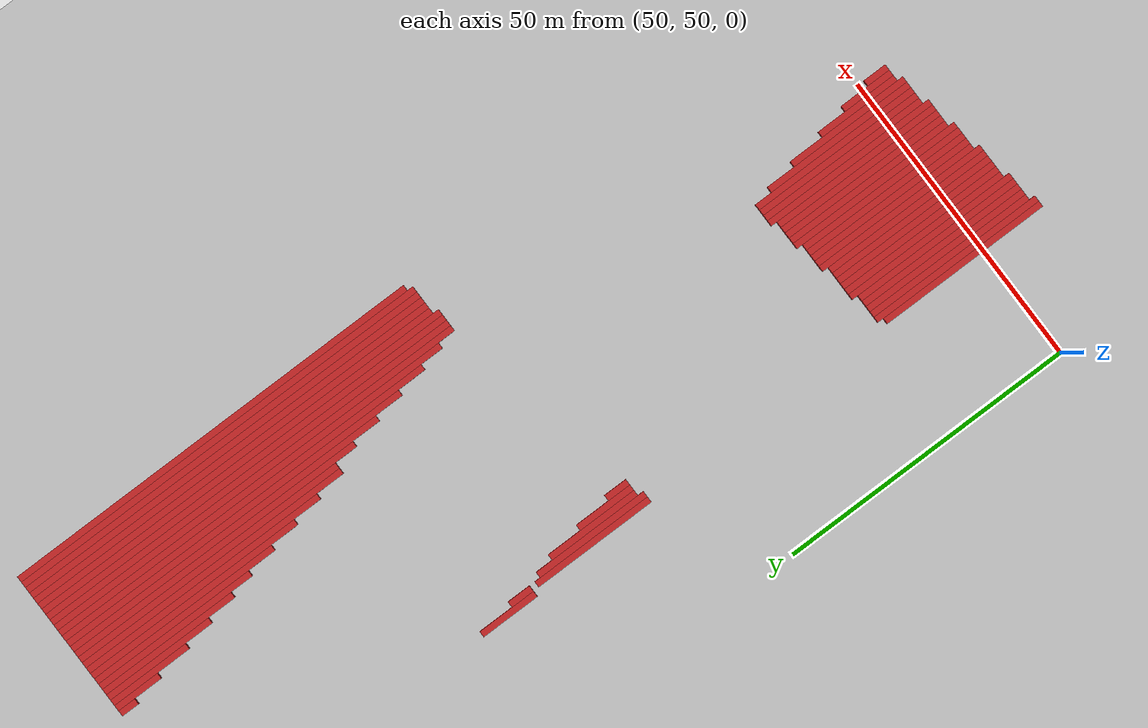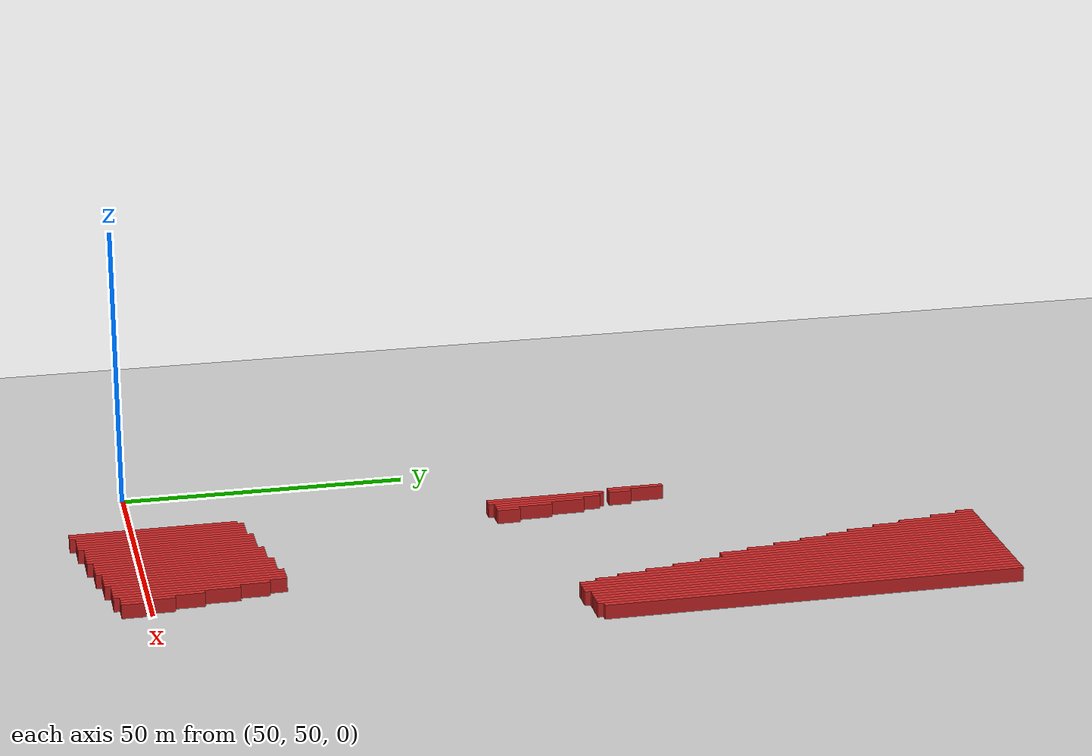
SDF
<sdf version="1.4">
 <world name="1_wall">
  <model name="ground_plane">
   <static>1</static>
   <link name="link">
    <collision name="collision">
     <geometry><plane><normal>0 0 1</normal><size>1000 1000</size></plane></geometry>
     <surface><friction><ode><mu>100</mu><mu2>50</mu2></ode></friction></surface>
    </collision>
    <visual name="visual">
     <cast_shadows>0</cast_shadows>
     <geometry><plane><normal>0 0 1</normal><size>10000 10000</size></plane></geometry>
     <material>
      <script><uri>file://media/materials/scripts/gazebo.material</uri><name>Gazebo/Grey</name></script>
     </material>
    </visual>
    <velocity_decay><linear>0</linear><angular>0</angular></velocity_decay>
   </link>
  </model>
  <model name="Wall_128">
   <static>1</static>
   <link name="Wall_128">
    <collision name="Wall_Collision_128">
     <geometry><box><size>10.0 1.0 2.5</size></box></geometry>
     <pose>0 0 1.25 0 -0 0</pose>
    </collision>
    <visual name="Wall_Visual_128">
     <pose>0 0 1.25 0 -0 0</pose>
     <geometry><box><size>10.0 1.0 2.5</size></box></geometry>
     <material>
      <script><uri>file://media/materials/scripts/gazebo.material</uri><name>Gazebo/Red</name></script>
     </material>
    </visual>
    <velocity_decay><linear>0</linear><angular>0</angular></velocity_decay>
    <pose>68.5 139.0 0 0 0 1.5707963267948966</pose>
   </link>
  </model>
  <model name="Wall_129">
   <static>1</static>
   <link name="Wall_129">
    <collision name="Wall_Collision_129">
     <geometry><box><size>29.0 1.0 2.5</size></box></geometry>
     <pose>0 0 1.25 0 -0 0</pose>
    </collision>
    <visual name="Wall_Visual_129">
     <pose>0 0 1.25 0 -0 0</pose>
     <geometry><box><size>29.0 1.0 2.5</size></box></geometry>
     <material>
      <script><uri>file://media/materials/scripts/gazebo.material</uri><name>Gazebo/Red</name></script>
     </material>
    </visual>
    <velocity_decay><linear>0</linear><angular>0</angular></velocity_decay>
    <pose>69.5 53.5 0 0 0 1.5707963267948966</pose>
   </link>
  </model>
  <model name="Wall_130">
   <static>1</static>
   <link name="Wall_130">
    <collision name="Wall_Collision_130">
     <geometry><box><size>21.0 1.0 2.5</size></box></geometry>
     <pose>0 0 1.25 0 -0 0</pose>
    </collision>
    <visual name="Wall_Visual_130">
     <pose>0 0 1.25 0 -0 0</pose>
     <geometry><box><size>21.0 1.0 2.5</size></box></geometry>
     <material>
      <script><uri>file://media/materials/scripts/gazebo.material</uri><name>Gazebo/Red</name></script>
     </material>
    </visual>
    <velocity_decay><linear>0</linear><angular>0</angular></velocity_decay>
    <pose>69.5 122.5 0 0 0 1.5707963267948966</pose>
   </link>
  </model>
  <model name="Wall_131">
   <static>1</static>
   <link name="Wall_131">
    <collision name="Wall_Collision_131">
     <geometry><box><size>4.0 1.0 2.5</size></box></geometry>
     <pose>0 0 1.25 0 -0 0</pose>
    </collision>
    <visual name="Wall_Visual_131">
     <pose>0 0 1.25 0 -0 0</pose>
     <geometry><box><size>4.0 1.0 2.5</size></box></geometry>
     <material>
      <script><uri>file://media/materials/scripts/gazebo.material</uri><name>Gazebo/Red</name></script>
     </material>
    </visual>
    <velocity_decay><linear>0</linear><angular>0</angular></velocity_decay>
    <pose>69.5 136.0 0 0 0 1.5707963267948966</pose>
   </link>
  </model>
  <model name="Wall_132">
   <static>1</static>
   <link name="Wall_132">
    <collision name="Wall_Collision_132">
     <geometry><box><size>30.0 1.0 2.5</size></box></geometry>
     <pose>0 0 1.25 0 -0 0</pose>
    </collision>
    <visual name="Wall_Visual_132">
     <pose>0 0 1.25 0 -0 0</pose>
     <geometry><box><size>30.0 1.0 2.5</size></box></geometry>
     <material>
      <script><uri>file://media/materials/scripts/gazebo.material</uri><name>Gazebo/Red</name></script>
     </material>
    </visual>
    <velocity_decay><linear>0</linear><angular>0</angular></velocity_decay>
    <pose>70.5 54.0 0 0 0 1.5707963267948966</pose>
   </link>
  </model>
  <model name="Wall_133">
   <static>1</static>
   <link name="Wall_133">
    <collision name="Wall_Collision_133">
     <geometry><box><size>20.0 1.0 2.5</size></box></geometry>
     <pose>0 0 1.25 0 -0 0</pose>
    </collision>
    <visual name="Wall_Visual_133">
     <pose>0 0 1.25 0 -0 0</pose>
     <geometry><box><size>20.0 1.0 2.5</size></box></geometry>
     <material>
      <script><uri>file://media/materials/scripts/gazebo.material</uri><name>Gazebo/Red</name></script>
     </material>
    </visual>
    <velocity_decay><linear>0</linear><angular>0</angular></velocity_decay>
    <pose>70.5 122.0 0 0 0 1.5707963267948966</pose>
   </link>
  </model>
  <model name="Wall_134">
   <static>1</static>
   <link name="Wall_134">
    <collision name="Wall_Collision_134">
     <geometry><box><size>29.0 1.0 2.5</size></box></geometry>
     <pose>0 0 1.25 0 -0 0</pose>
    </collision>
    <visual name="Wall_Visual_134">
     <pose>0 0 1.25 0 -0 0</pose>
     <geometry><box><size>29.0 1.0 2.5</size></box></geometry>
     <material>
      <script><uri>file://media/materials/scripts/gazebo.material</uri><name>Gazebo/Red</name></script>
     </material>
    </visual>
    <velocity_decay><linear>0</linear><angular>0</angular></velocity_decay>
    <pose>71.5 54.5 0 0 0 1.5707963267948966</pose>
   </link>
  </model>
  <model name="Wall_135">
   <static>1</static>
   <link name="Wall_135">
    <collision name="Wall_Collision_135">
     <geometry><box><size>16.0 1.0 2.5</size></box></geometry>
     <pose>0 0 1.25 0 -0 0</pose>
    </collision>
    <visual name="Wall_Visual_135">
     <pose>0 0 1.25 0 -0 0</pose>
     <geometry><box><size>16.0 1.0 2.5</size></box></geometry>
     <material>
      <script><uri>file://media/materials/scripts/gazebo.material</uri><name>Gazebo/Red</name></script>
     </material>
    </visual>
    <velocity_decay><linear>0</linear><angular>0</angular></velocity_decay>
    <pose>71.5 121.0 0 0 0 1.5707963267948966</pose>
   </link>
  </model>
  <model name="Wall_136">
   <static>1</static>
   <link name="Wall_136">
    <collision name="Wall_Collision_136">
     <geometry><box><size>29.0 1.0 2.5</size></box></geometry>
     <pose>0 0 1.25 0 -0 0</pose>
    </collision>
    <visual name="Wall_Visual_136">
     <pose>0 0 1.25 0 -0 0</pose>
     <geometry><box><size>29.0 1.0 2.5</size></box></geometry>
     <material>
      <script><uri>file://media/materials/scripts/gazebo.material</uri><name>Gazebo/Red</name></script>
     </material>
    </visual>
    <velocity_decay><linear>0</linear><angular>0</angular></velocity_decay>
    <pose>72.5 54.5 0 0 0 1.5707963267948966</pose>
   </link>
  </model>
  <model name="Wall_137">
   <static>1</static>
   <link name="Wall_137">
    <collision name="Wall_Collision_137">
     <geometry><box><size>10.0 1.0 2.5</size></box></geometry>
     <pose>0 0 1.25 0 -0 0</pose>
    </collision>
    <visual name="Wall_Visual_137">
     <pose>0 0 1.25 0 -0 0</pose>
     <geometry><box><size>10.0 1.0 2.5</size></box></geometry>
     <material>
      <script><uri>file://media/materials/scripts/gazebo.material</uri><name>Gazebo/Red</name></script>
     </material>
    </visual>
    <velocity_decay><linear>0</linear><angular>0</angular></velocity_decay>
    <pose>72.5 118.0 0 0 0 1.5707963267948966</pose>
   </link>
  </model>
  <model name="Wall_138">
   <static>1</static>
   <link name="Wall_138">
    <collision name="Wall_Collision_138">
     <geometry><box><size>29.0 1.0 2.5</size></box></geometry>
     <pose>0 0 1.25 0 -0 0</pose>
    </collision>
    <visual name="Wall_Visual_138">
     <pose>0 0 1.25 0 -0 0</pose>
     <geometry><box><size>29.0 1.0 2.5</size></box></geometry>
     <material>
      <script><uri>file://media/materials/scripts/gazebo.material</uri><name>Gazebo/Red</name></script>
     </material>
    </visual>
    <velocity_decay><linear>0</linear><angular>0</angular></velocity_decay>
    <pose>73.5 54.5 0 0 0 1.5707963267948966</pose>
   </link>
  </model>
  <model name="Wall_139">
   <static>1</static>
   <link name="Wall_139">
    <collision name="Wall_Collision_139">
     <geometry><box><size>4.0 1.0 2.5</size></box></geometry>
     <pose>0 0 1.25 0 -0 0</pose>
    </collision>
    <visual name="Wall_Visual_139">
     <pose>0 0 1.25 0 -0 0</pose>
     <geometry><box><size>4.0 1.0 2.5</size></box></geometry>
     <material>
      <script><uri>file://media/materials/scripts/gazebo.material</uri><name>Gazebo/Red</name></script>
     </material>
    </visual>
    <velocity_decay><linear>0</linear><angular>0</angular></velocity_decay>
    <pose>73.5 115.0 0 0 0 1.5707963267948966</pose>
   </link>
  </model>
  <model name="Wall_140">
   <static>1</static>
   <link name="Wall_140">
    <collision name="Wall_Collision_140">
     <geometry><box><size>29.0 1.0 2.5</size></box></geometry>
     <pose>0 0 1.25 0 -0 0</pose>
    </collision>
    <visual name="Wall_Visual_140">
     <pose>0 0 1.25 0 -0 0</pose>
     <geometry><box><size>29.0 1.0 2.5</size></box></geometry>
     <material>
      <script><uri>file://media/materials/scripts/gazebo.material</uri><name>Gazebo/Red</name></script>
     </material>
    </visual>
    <velocity_decay><linear>0</linear><angular>0</angular></velocity_decay>
    <pose>74.5 54.5 0 0 0 1.5707963267948966</pose>
   </link>
  </model>
  <model name="Wall_141">
   <static>1</static>
   <link name="Wall_141">
    <collision name="Wall_Collision_141">
     <geometry><box><size>30.0 1.0 2.5</size></box></geometry>
     <pose>0 0 1.25 0 -0 0</pose>
    </collision>
    <visual name="Wall_Visual_141">
     <pose>0 0 1.25 0 -0 0</pose>
     <geometry><box><size>30.0 1.0 2.5</size></box></geometry>
     <material>
      <script><uri>file://media/materials/scripts/gazebo.material</uri><name>Gazebo/Red</name></script>
     </material>
    </visual>
    <velocity_decay><linear>0</linear><angular>0</angular></velocity_decay>
    <pose>75.5 55.0 0 0 0 1.5707963267948966</pose>
   </link>
  </model>
  <model name="Wall_142">
   <static>1</static>
   <link name="Wall_142">
    <collision name="Wall_Collision_142">
     <geometry><box><size>29.0 1.0 2.5</size></box></geometry>
     <pose>0 0 1.25 0 -0 0</pose>
    </collision>
    <visual name="Wall_Visual_142">
     <pose>0 0 1.25 0 -0 0</pose>
     <geometry><box><size>29.0 1.0 2.5</size></box></geometry>
     <material>
      <script><uri>file://media/materials/scripts/gazebo.material</uri><name>Gazebo/Red</name></script>
     </material>
    </visual>
    <velocity_decay><linear>0</linear><angular>0</angular></velocity_decay>
    <pose>76.5 55.5 0 0 0 1.5707963267948966</pose>
   </link>
  </model>
  <model name="Wall_143">
   <static>1</static>
   <link name="Wall_143">
    <collision name="Wall_Collision_143">
     <geometry><box><size>29.0 1.0 2.5</size></box></geometry>
     <pose>0 0 1.25 0 -0 0</pose>
    </collision>
    <visual name="Wall_Visual_143">
     <pose>0 0 1.25 0 -0 0</pose>
     <geometry><box><size>29.0 1.0 2.5</size></box></geometry>
     <material>
      <script><uri>file://media/materials/scripts/gazebo.material</uri><name>Gazebo/Red</name></script>
     </material>
    </visual>
    <velocity_decay><linear>0</linear><angular>0</angular></velocity_decay>
    <pose>77.5 55.5 0 0 0 1.5707963267948966</pose>
   </link>
  </model>
  <model name="Wall_144">
   <static>1</static>
   <link name="Wall_144">
    <collision name="Wall_Collision_144">
     <geometry><box><size>29.0 1.0 2.5</size></box></geometry>
     <pose>0 0 1.25 0 -0 0</pose>
    </collision>
    <visual name="Wall_Visual_144">
     <pose>0 0 1.25 0 -0 0</pose>
     <geometry><box><size>29.0 1.0 2.5</size></box></geometry>
     <material>
      <script><uri>file://media/materials/scripts/gazebo.material</uri><name>Gazebo/Red</name></script>
     </material>
    </visual>
    <velocity_decay><linear>0</linear><angular>0</angular></velocity_decay>
    <pose>78.5 55.5 0 0 0 1.5707963267948966</pose>
   </link>
  </model>
  <model name="Wall_145">
   <static>1</static>
   <link name="Wall_145">
    <collision name="Wall_Collision_145">
     <geometry><box><size>29.0 1.0 2.5</size></box></geometry>
     <pose>0 0 1.25 0 -0 0</pose>
    </collision>
    <visual name="Wall_Visual_145">
     <pose>0 0 1.25 0 -0 0</pose>
     <geometry><box><size>29.0 1.0 2.5</size></box></geometry>
     <material>
      <script><uri>file://media/materials/scripts/gazebo.material</uri><name>Gazebo/Red</name></script>
     </material>
    </visual>
    <velocity_decay><linear>0</linear><angular>0</angular></velocity_decay>
    <pose>79.5 55.5 0 0 0 1.5707963267948966</pose>
   </link>
  </model>
  <model name="Wall_146">
   <static>1</static>
   <link name="Wall_146">
    <collision name="Wall_Collision_146">
     <geometry><box><size>29.0 1.0 2.5</size></box></geometry>
     <pose>0 0 1.25 0 -0 0</pose>
    </collision>
    <visual name="Wall_Visual_146">
     <pose>0 0 1.25 0 -0 0</pose>
     <geometry><box><size>29.0 1.0 2.5</size></box></geometry>
     <material>
      <script><uri>file://media/materials/scripts/gazebo.material</uri><name>Gazebo/Red</name></script>
     </material>
    </visual>
    <velocity_decay><linear>0</linear><angular>0</angular></velocity_decay>
    <pose>80.5 55.5 0 0 0 1.5707963267948966</pose>
   </link>
  </model>
  <model name="Wall_147">
   <static>1</static>
   <link name="Wall_147">
    <collision name="Wall_Collision_147">
     <geometry><box><size>30.0 1.0 2.5</size></box></geometry>
     <pose>0 0 1.25 0 -0 0</pose>
    </collision>
    <visual name="Wall_Visual_147">
     <pose>0 0 1.25 0 -0 0</pose>
     <geometry><box><size>30.0 1.0 2.5</size></box></geometry>
     <material>
      <script><uri>file://media/materials/scripts/gazebo.material</uri><name>Gazebo/Red</name></script>
     </material>
    </visual>
    <velocity_decay><linear>0</linear><angular>0</angular></velocity_decay>
    <pose>81.5 56.0 0 0 0 1.5707963267948966</pose>
   </link>
  </model>
  <model name="Wall_148">
   <static>1</static>
   <link name="Wall_148">
    <collision name="Wall_Collision_148">
     <geometry><box><size>29.0 1.0 2.5</size></box></geometry>
     <pose>0 0 1.25 0 -0 0</pose>
    </collision>
    <visual name="Wall_Visual_148">
     <pose>0 0 1.25 0 -0 0</pose>
     <geometry><box><size>29.0 1.0 2.5</size></box></geometry>
     <material>
      <script><uri>file://media/materials/scripts/gazebo.material</uri><name>Gazebo/Red</name></script>
     </material>
    </visual>
    <velocity_decay><linear>0</linear><angular>0</angular></velocity_decay>
    <pose>82.5 56.5 0 0 0 1.5707963267948966</pose>
   </link>
  </model>
  <model name="Wall_149">
   <static>1</static>
   <link name="Wall_149">
    <collision name="Wall_Collision_149">
     <geometry><box><size>29.0 1.0 2.5</size></box></geometry>
     <pose>0 0 1.25 0 -0 0</pose>
    </collision>
    <visual name="Wall_Visual_149">
     <pose>0 0 1.25 0 -0 0</pose>
     <geometry><box><size>29.0 1.0 2.5</size></box></geometry>
     <material>
      <script><uri>file://media/materials/scripts/gazebo.material</uri><name>Gazebo/Red</name></script>
     </material>
    </visual>
    <velocity_decay><linear>0</linear><angular>0</angular></velocity_decay>
    <pose>83.5 56.5 0 0 0 1.5707963267948966</pose>
   </link>
  </model>
  <model name="Wall_150">
   <static>1</static>
   <link name="Wall_150">
    <collision name="Wall_Collision_150">
     <geometry><box><size>29.0 1.0 2.5</size></box></geometry>
     <pose>0 0 1.25 0 -0 0</pose>
    </collision>
    <visual name="Wall_Visual_150">
     <pose>0 0 1.25 0 -0 0</pose>
     <geometry><box><size>29.0 1.0 2.5</size></box></geometry>
     <material>
      <script><uri>file://media/materials/scripts/gazebo.material</uri><name>Gazebo/Red</name></script>
     </material>
    </visual>
    <velocity_decay><linear>0</linear><angular>0</angular></velocity_decay>
    <pose>84.5 56.5 0 0 0 1.5707963267948966</pose>
   </link>
  </model>
  <model name="Wall_151">
   <static>1</static>
   <link name="Wall_151">
    <collision name="Wall_Collision_151">
     <geometry><box><size>29.0 1.0 2.5</size></box></geometry>
     <pose>0 0 1.25 0 -0 0</pose>
    </collision>
    <visual name="Wall_Visual_151">
     <pose>0 0 1.25 0 -0 0</pose>
     <geometry><box><size>29.0 1.0 2.5</size></box></geometry>
     <material>
      <script><uri>file://media/materials/scripts/gazebo.material</uri><name>Gazebo/Red</name></script>
     </material>
    </visual>
    <velocity_decay><linear>0</linear><angular>0</angular></velocity_decay>
    <pose>85.5 56.5 0 0 0 1.5707963267948966</pose>
   </link>
  </model>
  <model name="Wall_152">
   <static>1</static>
   <link name="Wall_152">
    <collision name="Wall_Collision_152">
     <geometry><box><size>30.0 1.0 2.5</size></box></geometry>
     <pose>0 0 1.25 0 -0 0</pose>
    </collision>
    <visual name="Wall_Visual_152">
     <pose>0 0 1.25 0 -0 0</pose>
     <geometry><box><size>30.0 1.0 2.5</size></box></geometry>
     <material>
      <script><uri>file://media/materials/scripts/gazebo.material</uri><name>Gazebo/Red</name></script>
     </material>
    </visual>
    <velocity_decay><linear>0</linear><angular>0</angular></velocity_decay>
    <pose>86.5 57.0 0 0 0 1.5707963267948966</pose>
   </link>
  </model>
  <model name="Wall_153">
   <static>1</static>
   <link name="Wall_153">
    <collision name="Wall_Collision_153">
     <geometry><box><size>29.0 1.0 2.5</size></box></geometry>
     <pose>0 0 1.25 0 -0 0</pose>
    </collision>
    <visual name="Wall_Visual_153">
     <pose>0 0 1.25 0 -0 0</pose>
     <geometry><box><size>29.0 1.0 2.5</size></box></geometry>
     <material>
      <script><uri>file://media/materials/scripts/gazebo.material</uri><name>Gazebo/Red</name></script>
     </material>
    </visual>
    <velocity_decay><linear>0</linear><angular>0</angular></velocity_decay>
    <pose>87.5 57.5 0 0 0 1.5707963267948966</pose>
   </link>
  </model>
  <model name="Wall_154">
   <static>1</static>
   <link name="Wall_154">
    <collision name="Wall_Collision_154">
     <geometry><box><size>29.0 1.0 2.5</size></box></geometry>
     <pose>0 0 1.25 0 -0 0</pose>
    </collision>
    <visual name="Wall_Visual_154">
     <pose>0 0 1.25 0 -0 0</pose>
     <geometry><box><size>29.0 1.0 2.5</size></box></geometry>
     <material>
      <script><uri>file://media/materials/scripts/gazebo.material</uri><name>Gazebo/Red</name></script>
     </material>
    </visual>
    <velocity_decay><linear>0</linear><angular>0</angular></velocity_decay>
    <pose>88.5 57.5 0 0 0 1.5707963267948966</pose>
   </link>
  </model>
  <model name="Wall_155">
   <static>1</static>
   <link name="Wall_155">
    <collision name="Wall_Collision_155">
     <geometry><box><size>29.0 1.0 2.5</size></box></geometry>
     <pose>0 0 1.25 0 -0 0</pose>
    </collision>
    <visual name="Wall_Visual_155">
     <pose>0 0 1.25 0 -0 0</pose>
     <geometry><box><size>29.0 1.0 2.5</size></box></geometry>
     <material>
      <script><uri>file://media/materials/scripts/gazebo.material</uri><name>Gazebo/Red</name></script>
     </material>
    </visual>
    <velocity_decay><linear>0</linear><angular>0</angular></velocity_decay>
    <pose>89.5 57.5 0 0 0 1.5707963267948966</pose>
   </link>
  </model>
  <model name="Wall_156">
   <static>1</static>
   <link name="Wall_156">
    <collision name="Wall_Collision_156">
     <geometry><box><size>29.0 1.0 2.5</size></box></geometry>
     <pose>0 0 1.25 0 -0 0</pose>
    </collision>
    <visual name="Wall_Visual_156">
     <pose>0 0 1.25 0 -0 0</pose>
     <geometry><box><size>29.0 1.0 2.5</size></box></geometry>
     <material>
      <script><uri>file://media/materials/scripts/gazebo.material</uri><name>Gazebo/Red</name></script>
     </material>
    </visual>
    <velocity_decay><linear>0</linear><angular>0</angular></velocity_decay>
    <pose>90.5 57.5 0 0 0 1.5707963267948966</pose>
   </link>
  </model>
  <model name="Wall_157">
   <static>1</static>
   <link name="Wall_157">
    <collision name="Wall_Collision_157">
     <geometry><box><size>30.0 1.0 2.5</size></box></geometry>
     <pose>0 0 1.25 0 -0 0</pose>
    </collision>
    <visual name="Wall_Visual_157">
     <pose>0 0 1.25 0 -0 0</pose>
     <geometry><box><size>30.0 1.0 2.5</size></box></geometry>
     <material>
      <script><uri>file://media/materials/scripts/gazebo.material</uri><name>Gazebo/Red</name></script>
     </material>
    </visual>
    <velocity_decay><linear>0</linear><angular>0</angular></velocity_decay>
    <pose>91.5 58.0 0 0 0 1.5707963267948966</pose>
   </link>
  </model>
  <model name="Wall_158">
   <static>1</static>
   <link name="Wall_158">
    <collision name="Wall_Collision_158">
     <geometry><box><size>3.0 1.0 2.5</size></box></geometry>
     <pose>0 0 1.25 0 -0 0</pose>
    </collision>
    <visual name="Wall_Visual_158">
     <pose>0 0 1.25 0 -0 0</pose>
     <geometry><box><size>3.0 1.0 2.5</size></box></geometry>
     <material>
      <script><uri>file://media/materials/scripts/gazebo.material</uri><name>Gazebo/Red</name></script>
     </material>
    </visual>
    <velocity_decay><linear>0</linear><angular>0</angular></velocity_decay>
    <pose>91.5 192.5 0 0 0 1.5707963267948966</pose>
   </link>
  </model>
  <model name="Wall_159">
   <static>1</static>
   <link name="Wall_159">
    <collision name="Wall_Collision_159">
     <geometry><box><size>29.0 1.0 2.5</size></box></geometry>
     <pose>0 0 1.25 0 -0 0</pose>
    </collision>
    <visual name="Wall_Visual_159">
     <pose>0 0 1.25 0 -0 0</pose>
     <geometry><box><size>29.0 1.0 2.5</size></box></geometry>
     <material>
      <script><uri>file://media/materials/scripts/gazebo.material</uri><name>Gazebo/Red</name></script>
     </material>
    </visual>
    <velocity_decay><linear>0</linear><angular>0</angular></velocity_decay>
    <pose>92.5 58.5 0 0 0 1.5707963267948966</pose>
   </link>
  </model>
  <model name="Wall_160">
   <static>1</static>
   <link name="Wall_160">
    <collision name="Wall_Collision_160">
     <geometry><box><size>8.0 1.0 2.5</size></box></geometry>
     <pose>0 0 1.25 0 -0 0</pose>
    </collision>
    <visual name="Wall_Visual_160">
     <pose>0 0 1.25 0 -0 0</pose>
     <geometry><box><size>8.0 1.0 2.5</size></box></geometry>
     <material>
      <script><uri>file://media/materials/scripts/gazebo.material</uri><name>Gazebo/Red</name></script>
     </material>
    </visual>
    <velocity_decay><linear>0</linear><angular>0</angular></velocity_decay>
    <pose>92.5 190.0 0 0 0 1.5707963267948966</pose>
   </link>
  </model>
  <model name="Wall_161">
   <static>1</static>
   <link name="Wall_161">
    <collision name="Wall_Collision_161">
     <geometry><box><size>29.0 1.0 2.5</size></box></geometry>
     <pose>0 0 1.25 0 -0 0</pose>
    </collision>
    <visual name="Wall_Visual_161">
     <pose>0 0 1.25 0 -0 0</pose>
     <geometry><box><size>29.0 1.0 2.5</size></box></geometry>
     <material>
      <script><uri>file://media/materials/scripts/gazebo.material</uri><name>Gazebo/Red</name></script>
     </material>
    </visual>
    <velocity_decay><linear>0</linear><angular>0</angular></velocity_decay>
    <pose>93.5 58.5 0 0 0 1.5707963267948966</pose>
   </link>
  </model>
  <model name="Wall_162">
   <static>1</static>
   <link name="Wall_162">
    <collision name="Wall_Collision_162">
     <geometry><box><size>14.0 1.0 2.5</size></box></geometry>
     <pose>0 0 1.25 0 -0 0</pose>
    </collision>
    <visual name="Wall_Visual_162">
     <pose>0 0 1.25 0 -0 0</pose>
     <geometry><box><size>14.0 1.0 2.5</size></box></geometry>
     <material>
      <script><uri>file://media/materials/scripts/gazebo.material</uri><name>Gazebo/Red</name></script>
     </material>
    </visual>
    <velocity_decay><linear>0</linear><angular>0</angular></velocity_decay>
    <pose>93.5 187.0 0 0 0 1.5707963267948966</pose>
   </link>
  </model>
  <model name="Wall_163">
   <static>1</static>
   <link name="Wall_163">
    <collision name="Wall_Collision_163">
     <geometry><box><size>29.0 1.0 2.5</size></box></geometry>
     <pose>0 0 1.25 0 -0 0</pose>
    </collision>
    <visual name="Wall_Visual_163">
     <pose>0 0 1.25 0 -0 0</pose>
     <geometry><box><size>29.0 1.0 2.5</size></box></geometry>
     <material>
      <script><uri>file://media/materials/scripts/gazebo.material</uri><name>Gazebo/Red</name></script>
     </material>
    </visual>
    <velocity_decay><linear>0</linear><angular>0</angular></velocity_decay>
    <pose>94.5 58.5 0 0 0 1.5707963267948966</pose>
   </link>
  </model>
  <model name="Wall_164">
   <static>1</static>
   <link name="Wall_164">
    <collision name="Wall_Collision_164">
     <geometry><box><size>19.0 1.0 2.5</size></box></geometry>
     <pose>0 0 1.25 0 -0 0</pose>
    </collision>
    <visual name="Wall_Visual_164">
     <pose>0 0 1.25 0 -0 0</pose>
     <geometry><box><size>19.0 1.0 2.5</size></box></geometry>
     <material>
      <script><uri>file://media/materials/scripts/gazebo.material</uri><name>Gazebo/Red</name></script>
     </material>
    </visual>
    <velocity_decay><linear>0</linear><angular>0</angular></velocity_decay>
    <pose>94.5 184.5 0 0 0 1.5707963267948966</pose>
   </link>
  </model>
  <model name="Wall_165">
   <static>1</static>
   <link name="Wall_165">
    <collision name="Wall_Collision_165">
     <geometry><box><size>26.0 1.0 2.5</size></box></geometry>
     <pose>0 0 1.25 0 -0 0</pose>
    </collision>
    <visual name="Wall_Visual_165">
     <pose>0 0 1.25 0 -0 0</pose>
     <geometry><box><size>26.0 1.0 2.5</size></box></geometry>
     <material>
      <script><uri>file://media/materials/scripts/gazebo.material</uri><name>Gazebo/Red</name></script>
     </material>
    </visual>
    <velocity_decay><linear>0</linear><angular>0</angular></velocity_decay>
    <pose>95.5 57.0 0 0 0 1.5707963267948966</pose>
   </link>
  </model>
  <model name="Wall_166">
   <static>1</static>
   <link name="Wall_166">
    <collision name="Wall_Collision_166">
     <geometry><box><size>24.0 1.0 2.5</size></box></geometry>
     <pose>0 0 1.25 0 -0 0</pose>
    </collision>
    <visual name="Wall_Visual_166">
     <pose>0 0 1.25 0 -0 0</pose>
     <geometry><box><size>24.0 1.0 2.5</size></box></geometry>
     <material>
      <script><uri>file://media/materials/scripts/gazebo.material</uri><name>Gazebo/Red</name></script>
     </material>
    </visual>
    <velocity_decay><linear>0</linear><angular>0</angular></velocity_decay>
    <pose>95.5 182.0 0 0 0 1.5707963267948966</pose>
   </link>
  </model>
  <model name="Wall_167">
   <static>1</static>
   <link name="Wall_167">
    <collision name="Wall_Collision_167">
     <geometry><box><size>21.0 1.0 2.5</size></box></geometry>
     <pose>0 0 1.25 0 -0 0</pose>
    </collision>
    <visual name="Wall_Visual_167">
     <pose>0 0 1.25 0 -0 0</pose>
     <geometry><box><size>21.0 1.0 2.5</size></box></geometry>
     <material>
      <script><uri>file://media/materials/scripts/gazebo.material</uri><name>Gazebo/Red</name></script>
     </material>
    </visual>
    <velocity_decay><linear>0</linear><angular>0</angular></velocity_decay>
    <pose>96.5 54.5 0 0 0 1.5707963267948966</pose>
   </link>
  </model>
  <model name="Wall_168">
   <static>1</static>
   <link name="Wall_168">
    <collision name="Wall_Collision_168">
     <geometry><box><size>28.0 1.0 2.5</size></box></geometry>
     <pose>0 0 1.25 0 -0 0</pose>
    </collision>
    <visual name="Wall_Visual_168">
     <pose>0 0 1.25 0 -0 0</pose>
     <geometry><box><size>28.0 1.0 2.5</size></box></geometry>
     <material>
      <script><uri>file://media/materials/scripts/gazebo.material</uri><name>Gazebo/Red</name></script>
     </material>
    </visual>
    <velocity_decay><linear>0</linear><angular>0</angular></velocity_decay>
    <pose>96.5 180.0 0 0 0 1.5707963267948966</pose>
   </link>
  </model>
  <model name="Wall_169">
   <static>1</static>
   <link name="Wall_169">
    <collision name="Wall_Collision_169">
     <geometry><box><size>14.0 1.0 2.5</size></box></geometry>
     <pose>0 0 1.25 0 -0 0</pose>
    </collision>
    <visual name="Wall_Visual_169">
     <pose>0 0 1.25 0 -0 0</pose>
     <geometry><box><size>14.0 1.0 2.5</size></box></geometry>
     <material>
      <script><uri>file://media/materials/scripts/gazebo.material</uri><name>Gazebo/Red</name></script>
     </material>
    </visual>
    <velocity_decay><linear>0</linear><angular>0</angular></velocity_decay>
    <pose>97.5 52.0 0 0 0 1.5707963267948966</pose>
   </link>
  </model>
  <model name="Wall_170">
   <static>1</static>
   <link name="Wall_170">
    <collision name="Wall_Collision_170">
     <geometry><box><size>33.0 1.0 2.5</size></box></geometry>
     <pose>0 0 1.25 0 -0 0</pose>
    </collision>
    <visual name="Wall_Visual_170">
     <pose>0 0 1.25 0 -0 0</pose>
     <geometry><box><size>33.0 1.0 2.5</size></box></geometry>
     <material>
      <script><uri>file://media/materials/scripts/gazebo.material</uri><name>Gazebo/Red</name></script>
     </material>
    </visual>
    <velocity_decay><linear>0</linear><angular>0</angular></velocity_decay>
    <pose>97.5 177.5 0 0 0 1.5707963267948966</pose>
   </link>
  </model>
  <model name="Wall_171">
   <static>1</static>
   <link name="Wall_171">
    <collision name="Wall_Collision_171">
     <geometry><box><size>9.0 1.0 2.5</size></box></geometry>
     <pose>0 0 1.25 0 -0 0</pose>
    </collision>
    <visual name="Wall_Visual_171">
     <pose>0 0 1.25 0 -0 0</pose>
     <geometry><box><size>9.0 1.0 2.5</size></box></geometry>
     <material>
      <script><uri>file://media/materials/scripts/gazebo.material</uri><name>Gazebo/Red</name></script>
     </material>
    </visual>
    <velocity_decay><linear>0</linear><angular>0</angular></velocity_decay>
    <pose>98.5 49.5 0 0 0 1.5707963267948966</pose>
   </link>
  </model>
  <model name="Wall_172">
   <static>1</static>
   <link name="Wall_172">
    <collision name="Wall_Collision_172">
     <geometry><box><size>38.0 1.0 2.5</size></box></geometry>
     <pose>0 0 1.25 0 -0 0</pose>
    </collision>
    <visual name="Wall_Visual_172">
     <pose>0 0 1.25 0 -0 0</pose>
     <geometry><box><size>38.0 1.0 2.5</size></box></geometry>
     <material>
      <script><uri>file://media/materials/scripts/gazebo.material</uri><name>Gazebo/Red</name></script>
     </material>
    </visual>
    <velocity_decay><linear>0</linear><angular>0</angular></velocity_decay>
    <pose>98.5 175.0 0 0 0 1.5707963267948966</pose>
   </link>
  </model>
  <model name="Wall_173">
   <static>1</static>
   <link name="Wall_173">
    <collision name="Wall_Collision_173">
     <geometry><box><size>4.0 1.0 2.5</size></box></geometry>
     <pose>0 0 1.25 0 -0 0</pose>
    </collision>
    <visual name="Wall_Visual_173">
     <pose>0 0 1.25 0 -0 0</pose>
     <geometry><box><size>4.0 1.0 2.5</size></box></geometry>
     <material>
      <script><uri>file://media/materials/scripts/gazebo.material</uri><name>Gazebo/Red</name></script>
     </material>
    </visual>
    <velocity_decay><linear>0</linear><angular>0</angular></velocity_decay>
    <pose>99.5 47.0 0 0 0 1.5707963267948966</pose>
   </link>
  </model>
  <model name="Wall_174">
   <static>1</static>
   <link name="Wall_174">
    <collision name="Wall_Collision_174">
     <geometry><box><size>43.0 1.0 2.5</size></box></geometry>
     <pose>0 0 1.25 0 -0 0</pose>
    </collision>
    <visual name="Wall_Visual_174">
     <pose>0 0 1.25 0 -0 0</pose>
     <geometry><box><size>43.0 1.0 2.5</size></box></geometry>
     <material>
      <script><uri>file://media/materials/scripts/gazebo.material</uri><name>Gazebo/Red</name></script>
     </material>
    </visual>
    <velocity_decay><linear>0</linear><angular>0</angular></velocity_decay>
    <pose>99.5 172.5 0 0 0 1.5707963267948966</pose>
   </link>
  </model>
  <model name="Wall_175">
   <static>1</static>
   <link name="Wall_175">
    <collision name="Wall_Collision_175">
     <geometry><box><size>48.0 1.0 2.5</size></box></geometry>
     <pose>0 0 1.25 0 -0 0</pose>
    </collision>
    <visual name="Wall_Visual_175">
     <pose>0 0 1.25 0 -0 0</pose>
     <geometry><box><size>48.0 1.0 2.5</size></box></geometry>
     <material>
      <script><uri>file://media/materials/scripts/gazebo.material</uri><name>Gazebo/Red</name></script>
     </material>
    </visual>
    <velocity_decay><linear>0</linear><angular>0</angular></velocity_decay>
    <pose>100.5 170.0 0 0 0 1.5707963267948966</pose>
   </link>
  </model>
  <model name="Wall_176">
   <static>1</static>
   <link name="Wall_176">
    <collision name="Wall_Collision_176">
     <geometry><box><size>48.0 1.0 2.5</size></box></geometry>
     <pose>0 0 1.25 0 -0 0</pose>
    </collision>
    <visual name="Wall_Visual_176">
     <pose>0 0 1.25 0 -0 0</pose>
     <geometry><box><size>48.0 1.0 2.5</size></box></geometry>
     <material>
      <script><uri>file://media/materials/scripts/gazebo.material</uri><name>Gazebo/Red</name></script>
     </material>
    </visual>
    <velocity_decay><linear>0</linear><angular>0</angular></velocity_decay>
    <pose>101.5 170.0 0 0 0 1.5707963267948966</pose>
   </link>
  </model>
  <model name="Wall_177">
   <static>1</static>
   <link name="Wall_177">
    <collision name="Wall_Collision_177">
     <geometry><box><size>52.0 1.0 2.5</size></box></geometry>
     <pose>0 0 1.25 0 -0 0</pose>
    </collision>
    <visual name="Wall_Visual_177">
     <pose>0 0 1.25 0 -0 0</pose>
     <geometry><box><size>52.0 1.0 2.5</size></box></geometry>
     <material>
      <script><uri>file://media/materials/scripts/gazebo.material</uri><name>Gazebo/Red</name></script>
     </material>
    </visual>
    <velocity_decay><linear>0</linear><angular>0</angular></velocity_decay>
    <pose>102.5 168.0 0 0 0 1.5707963267948966</pose>
   </link>
  </model>
  <model name="Wall_178">
   <static>1</static>
   <link name="Wall_178">
    <collision name="Wall_Collision_178">
     <geometry><box><size>57.0 1.0 2.5</size></box></geometry>
     <pose>0 0 1.25 0 -0 0</pose>
    </collision>
    <visual name="Wall_Visual_178">
     <pose>0 0 1.25 0 -0 0</pose>
     <geometry><box><size>57.0 1.0 2.5</size></box></geometry>
     <material>
      <script><uri>file://media/materials/scripts/gazebo.material</uri><name>Gazebo/Red</name></script>
     </material>
    </visual>
    <velocity_decay><linear>0</linear><angular>0</angular></velocity_decay>
    <pose>103.5 165.5 0 0 0 1.5707963267948966</pose>
   </link>
  </model>
  <model name="Wall_179">
   <static>1</static>
   <link name="Wall_179">
    <collision name="Wall_Collision_179">
     <geometry><box><size>62.0 1.0 2.5</size></box></geometry>
     <pose>0 0 1.25 0 -0 0</pose>
    </collision>
    <visual name="Wall_Visual_179">
     <pose>0 0 1.25 0 -0 0</pose>
     <geometry><box><size>62.0 1.0 2.5</size></box></geometry>
     <material>
      <script><uri>file://media/materials/scripts/gazebo.material</uri><name>Gazebo/Red</name></script>
     </material>
    </visual>
    <velocity_decay><linear>0</linear><angular>0</angular></velocity_decay>
    <pose>104.5 163.0 0 0 0 1.5707963267948966</pose>
   </link>
  </model>
  <model name="Wall_180">
   <static>1</static>
   <link name="Wall_180">
    <collision name="Wall_Collision_180">
     <geometry><box><size>67.0 1.0 2.5</size></box></geometry>
     <pose>0 0 1.25 0 -0 0</pose>
    </collision>
    <visual name="Wall_Visual_180">
     <pose>0 0 1.25 0 -0 0</pose>
     <geometry><box><size>67.0 1.0 2.5</size></box></geometry>
     <material>
      <script><uri>file://media/materials/scripts/gazebo.material</uri><name>Gazebo/Red</name></script>
     </material>
    </visual>
    <velocity_decay><linear>0</linear><angular>0</angular></velocity_decay>
    <pose>105.5 160.5 0 0 0 1.5707963267948966</pose>
   </link>
  </model>
  <model name="Wall_181">
   <static>1</static>
   <link name="Wall_181">
    <collision name="Wall_Collision_181">
     <geometry><box><size>71.0 1.0 2.5</size></box></geometry>
     <pose>0 0 1.25 0 -0 0</pose>
    </collision>
    <visual name="Wall_Visual_181">
     <pose>0 0 1.25 0 -0 0</pose>
     <geometry><box><size>71.0 1.0 2.5</size></box></geometry>
     <material>
      <script><uri>file://media/materials/scripts/gazebo.material</uri><name>Gazebo/Red</name></script>
     </material>
    </visual>
    <velocity_decay><linear>0</linear><angular>0</angular></velocity_decay>
    <pose>106.5 158.5 0 0 0 1.5707963267948966</pose>
   </link>
  </model>
  <model name="Wall_182">
   <static>1</static>
   <link name="Wall_182">
    <collision name="Wall_Collision_182">
     <geometry><box><size>74.0 1.0 2.5</size></box></geometry>
     <pose>0 0 1.25 0 -0 0</pose>
    </collision>
    <visual name="Wall_Visual_182">
     <pose>0 0 1.25 0 -0 0</pose>
     <geometry><box><size>74.0 1.0 2.5</size></box></geometry>
     <material>
      <script><uri>file://media/materials/scripts/gazebo.material</uri><name>Gazebo/Red</name></script>
     </material>
    </visual>
    <velocity_decay><linear>0</linear><angular>0</angular></velocity_decay>
    <pose>107.5 157.0 0 0 0 1.5707963267948966</pose>
   </link>
  </model>
  <model name="Wall_183">
   <static>1</static>
   <link name="Wall_183">
    <collision name="Wall_Collision_183">
     <geometry><box><size>74.0 1.0 2.5</size></box></geometry>
     <pose>0 0 1.25 0 -0 0</pose>
    </collision>
    <visual name="Wall_Visual_183">
     <pose>0 0 1.25 0 -0 0</pose>
     <geometry><box><size>74.0 1.0 2.5</size></box></geometry>
     <material>
      <script><uri>file://media/materials/scripts/gazebo.material</uri><name>Gazebo/Red</name></script>
     </material>
    </visual>
    <velocity_decay><linear>0</linear><angular>0</angular></velocity_decay>
    <pose>108.5 157.0 0 0 0 1.5707963267948966</pose>
   </link>
  </model>
  <model name="Wall_184">
   <static>1</static>
   <link name="Wall_184">
    <collision name="Wall_Collision_184">
     <geometry><box><size>74.0 1.0 2.5</size></box></geometry>
     <pose>0 0 1.25 0 -0 0</pose>
    </collision>
    <visual name="Wall_Visual_184">
     <pose>0 0 1.25 0 -0 0</pose>
     <geometry><box><size>74.0 1.0 2.5</size></box></geometry>
     <material>
      <script><uri>file://media/materials/scripts/gazebo.material</uri><name>Gazebo/Red</name></script>
     </material>
    </visual>
    <velocity_decay><linear>0</linear><angular>0</angular></velocity_decay>
    <pose>109.5 157.0 0 0 0 1.5707963267948966</pose>
   </link>
  </model>
  <model name="Wall_185">
   <static>1</static>
   <link name="Wall_185">
    <collision name="Wall_Collision_185">
     <geometry><box><size>74.0 1.0 2.5</size></box></geometry>
     <pose>0 0 1.25 0 -0 0</pose>
    </collision>
    <visual name="Wall_Visual_185">
     <pose>0 0 1.25 0 -0 0</pose>
     <geometry><box><size>74.0 1.0 2.5</size></box></geometry>
     <material>
      <script><uri>file://media/materials/scripts/gazebo.material</uri><name>Gazebo/Red</name></script>
     </material>
    </visual>
    <velocity_decay><linear>0</linear><angular>0</angular></velocity_decay>
    <pose>110.5 157.0 0 0 0 1.5707963267948966</pose>
   </link>
  </model>
  <model name="Wall_186">
   <static>1</static>
   <link name="Wall_186">
    <collision name="Wall_Collision_186">
     <geometry><box><size>73.0 1.0 2.5</size></box></geometry>
     <pose>0 0 1.25 0 -0 0</pose>
    </collision>
    <visual name="Wall_Visual_186">
     <pose>0 0 1.25 0 -0 0</pose>
     <geometry><box><size>73.0 1.0 2.5</size></box></geometry>
     <material>
      <script><uri>file://media/materials/scripts/gazebo.material</uri><name>Gazebo/Red</name></script>
     </material>
    </visual>
    <velocity_decay><linear>0</linear><angular>0</angular></velocity_decay>
    <pose>111.5 157.5 0 0 0 1.5707963267948966</pose>
   </link>
  </model>
  <model name="Wall_187">
   <static>1</static>
   <link name="Wall_187">
    <collision name="Wall_Collision_187">
     <geometry><box><size>73.0 1.0 2.5</size></box></geometry>
     <pose>0 0 1.25 0 -0 0</pose>
    </collision>
    <visual name="Wall_Visual_187">
     <pose>0 0 1.25 0 -0 0</pose>
     <geometry><box><size>73.0 1.0 2.5</size></box></geometry>
     <material>
      <script><uri>file://media/materials/scripts/gazebo.material</uri><name>Gazebo/Red</name></script>
     </material>
    </visual>
    <velocity_decay><linear>0</linear><angular>0</angular></velocity_decay>
    <pose>112.5 157.5 0 0 0 1.5707963267948966</pose>
   </link>
  </model>
  <model name="Wall_188">
   <static>1</static>
   <link name="Wall_188">
    <collision name="Wall_Collision_188">
     <geometry><box><size>73.0 1.0 2.5</size></box></geometry>
     <pose>0 0 1.25 0 -0 0</pose>
    </collision>
    <visual name="Wall_Visual_188">
     <pose>0 0 1.25 0 -0 0</pose>
     <geometry><box><size>73.0 1.0 2.5</size></box></geometry>
     <material>
      <script><uri>file://media/materials/scripts/gazebo.material</uri><name>Gazebo/Red</name></script>
     </material>
    </visual>
    <velocity_decay><linear>0</linear><angular>0</angular></velocity_decay>
    <pose>113.5 157.5 0 0 0 1.5707963267948966</pose>
   </link>
  </model>
  <model name="Wall_189">
   <static>1</static>
   <link name="Wall_189">
    <collision name="Wall_Collision_189">
     <geometry><box><size>73.0 1.0 2.5</size></box></geometry>
     <pose>0 0 1.25 0 -0 0</pose>
    </collision>
    <visual name="Wall_Visual_189">
     <pose>0 0 1.25 0 -0 0</pose>
     <geometry><box><size>73.0 1.0 2.5</size></box></geometry>
     <material>
      <script><uri>file://media/materials/scripts/gazebo.material</uri><name>Gazebo/Red</name></script>
     </material>
    </visual>
    <velocity_decay><linear>0</linear><angular>0</angular></velocity_decay>
    <pose>114.5 157.5 0 0 0 1.5707963267948966</pose>
   </link>
  </model>
  <model name="Wall_190">
   <static>1</static>
   <link name="Wall_190">
    <collision name="Wall_Collision_190">
     <geometry><box><size>73.0 1.0 2.5</size></box></geometry>
     <pose>0 0 1.25 0 -0 0</pose>
    </collision>
    <visual name="Wall_Visual_190">
     <pose>0 0 1.25 0 -0 0</pose>
     <geometry><box><size>73.0 1.0 2.5</size></box></geometry>
     <material>
      <script><uri>file://media/materials/scripts/gazebo.material</uri><name>Gazebo/Red</name></script>
     </material>
    </visual>
    <velocity_decay><linear>0</linear><angular>0</angular></velocity_decay>
    <pose>115.5 157.5 0 0 0 1.5707963267948966</pose>
   </link>
  </model>
  <model name="Wall_191">
   <static>1</static>
   <link name="Wall_191">
    <collision name="Wall_Collision_191">
     <geometry><box><size>72.0 1.0 2.5</size></box></geometry>
     <pose>0 0 1.25 0 -0 0</pose>
    </collision>
    <visual name="Wall_Visual_191">
     <pose>0 0 1.25 0 -0 0</pose>
     <geometry><box><size>72.0 1.0 2.5</size></box></geometry>
     <material>
      <script><uri>file://media/materials/scripts/gazebo.material</uri><name>Gazebo/Red</name></script>
     </material>
    </visual>
    <velocity_decay><linear>0</linear><angular>0</angular></velocity_decay>
    <pose>116.5 158.0 0 0 0 1.5707963267948966</pose>
   </link>
  </model>
 </world>
</sdf>
